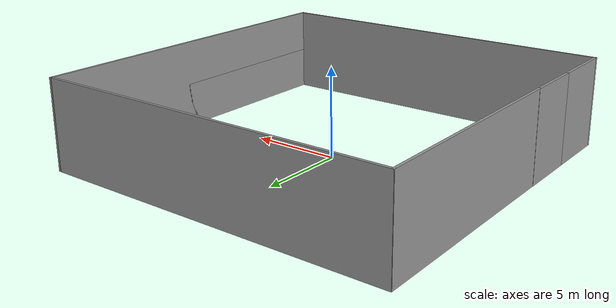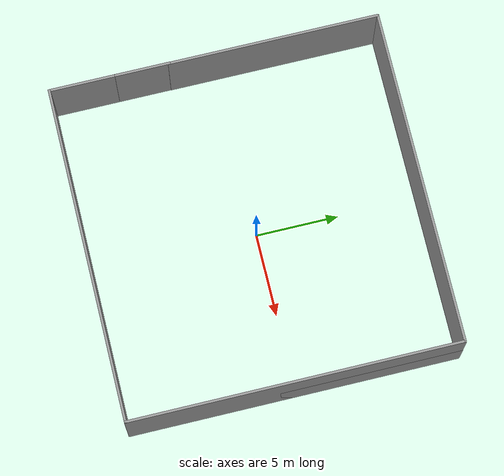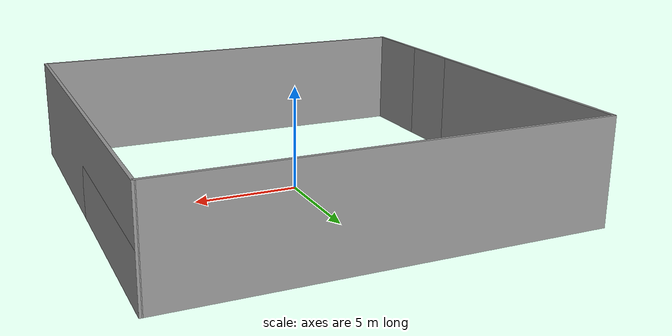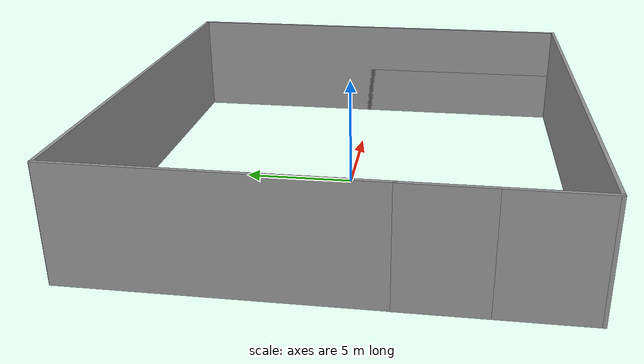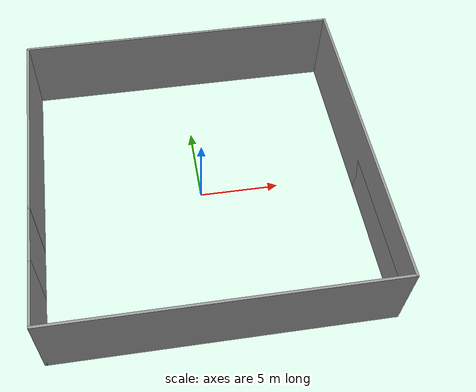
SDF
<?xml version='1.0'?>
<sdf version='1.7'>
  <model name='tall_wall_basic'>
    <pose>-0.112472 -0.11 0 0 -0 0</pose>
    <link name='Wall_10'>
      <collision name='Wall_10_Collision'>
        <geometry>
          <box>
            <size>4 0.15 5</size>
          </box>
        </geometry>
        <pose>0 0 2.5 0 -0 0</pose>
      </collision>
      <visual name='Wall_10_Visual'>
        <pose>0 0 2.5 0 -0 0</pose>
        <geometry>
          <box>
            <size>4 0.15 5</size>
          </box>
        </geometry>
        <material>
          <script>
            <uri>file://media/materials/scripts/gazebo.material</uri>
            <name>Gazebo/Grey</name>
          </script>
          <ambient>1 1 1 1</ambient>
        </material>
        <meta>
          <layer>0</layer>
        </meta>
      </visual>
      <pose>-10.0575 -7.985 0 0 -0 -1.5708</pose>
    </link>
    <link name='Wall_11'>
      <collision name='Wall_11_Collision'>
        <geometry>
          <box>
            <size>20.25 0.15 5</size>
          </box>
        </geometry>
        <pose>0 0 2.5 0 -0 0</pose>
      </collision>
      <visual name='Wall_11_Visual'>
        <pose>0 0 2.5 0 -0 0</pose>
        <geometry>
          <box>
            <size>20.25 0.15 5</size>
          </box>
        </geometry>
        <material>
          <script>
            <uri>file://media/materials/scripts/gazebo.material</uri>
            <name>Gazebo/Grey</name>
          </script>
          <ambient>1 1 1 1</ambient>
        </material>
        <meta>
          <layer>0</layer>
        </meta>
      </visual>
      <pose>-0.007528 -9.91 0 0 -0 0</pose>
    </link>
    <link name='Wall_13'>
      <collision name='Wall_13_Collision'>
        <geometry>
          <box>
            <size>19.9699 0.15 2.5</size>
          </box>
        </geometry>
        <pose>0 0 1.25 0 -0 0</pose>
      </collision>
      <visual name='Wall_13_Visual'>
        <pose>0 0 1.25 0 -0 0</pose>
        <geometry>
          <box>
            <size>19.9699 0.15 2.5</size>
          </box>
        </geometry>
        <material>
          <script>
            <uri>file://media/materials/scripts/gazebo.material</uri>
            <name>Gazebo/Grey</name>
          </script>
          <ambient>1 1 1 1</ambient>
        </material>
        <meta>
          <layer>0</layer>
        </meta>
      </visual>
      <pose>10.05 -0 0 0 -0 1.57004</pose>
    </link>
    <link name='Wall_14'>
      <collision name='Wall_14_Collision'>
        <geometry>
          <box>
            <size>19.9699 0.15 5</size>
          </box>
        </geometry>
        <pose>0 0 2.5 0 -0 0</pose>
      </collision>
      <visual name='Wall_14_Visual'>
        <pose>0 0 2.5 0 -0 0</pose>
        <geometry>
          <box>
            <size>19.9699 0.15 5</size>
          </box>
        </geometry>
        <material>
          <script>
            <uri>file://media/materials/scripts/gazebo.material</uri>
            <name>Gazebo/Grey</name>
          </script>
          <ambient>1 1 1 1</ambient>
        </material>
        <meta>
          <layer>0</layer>
        </meta>
      </visual>
      <pose>10.05 -0 0 0 -0 -1.57155</pose>
    </link>
    <link name='Wall_17'>
      <collision name='Wall_17_Collision'>
        <geometry>
          <box>
            <size>20.2348 0.15 5</size>
          </box>
        </geometry>
        <pose>0 0 2.5 0 -0 0</pose>
      </collision>
      <visual name='Wall_17_Visual'>
        <pose>0 0 2.5 0 -0 0</pose>
        <geometry>
          <box>
            <size>20.2348 0.15 5</size>
          </box>
        </geometry>
        <material>
          <script>
            <uri>file://media/materials/scripts/gazebo.material</uri>
            <name>Gazebo/Grey</name>
          </script>
          <ambient>1 1 1 1</ambient>
        </material>
        <meta>
          <layer>0</layer>
        </meta>
      </visual>
      <pose>0.014972 9.91 0 0 -0 3.14159</pose>
    </link>
    <link name='Wall_19'>
      <collision name='Wall_19_Collision'>
        <geometry>
          <box>
            <size>12.75 0.15 5</size>
          </box>
        </geometry>
        <pose>0 0 2.5 0 -0 0</pose>
      </collision>
      <visual name='Wall_19_Visual'>
        <pose>0 0 2.5 0 -0 0</pose>
        <geometry>
          <box>
            <size>12.75 0.15 5</size>
          </box>
        </geometry>
        <material>
          <script>
            <uri>file://media/materials/scripts/gazebo.material</uri>
            <name>Gazebo/Grey</name>
          </script>
          <ambient>1 1 1 1</ambient>
        </material>
        <meta>
          <layer>0</layer>
        </meta>
      </visual>
      <pose>-10.0475 3.587 0 0 -0 1.5708</pose>
    </link>
    <link name='Wall_6'>
      <collision name='Wall_6_Collision'>
        <geometry>
          <box>
            <size>3.5 0.15 5</size>
          </box>
        </geometry>
        <pose>0 0 2.5 0 -0 0</pose>
      </collision>
      <visual name='Wall_6_Visual'>
        <pose>0 0 2.5 0 -0 0</pose>
        <geometry>
          <box>
            <size>3.5 0.15 5</size>
          </box>
        </geometry>
        <material>
          <script>
            <uri>file://media/materials/scripts/gazebo.material</uri>
            <name>Gazebo/Grey</name>
          </script>
          <ambient>1 1 1 1</ambient>
        </material>
        <meta>
          <layer>0</layer>
        </meta>
      </visual>
      <pose>-10.0575 -4.385 0 0 -0 -1.5708</pose>
    </link>
    <static>1</static>
  </model>
</sdf>
